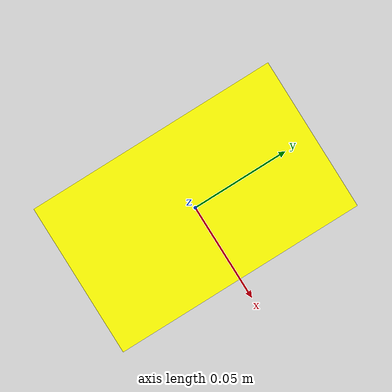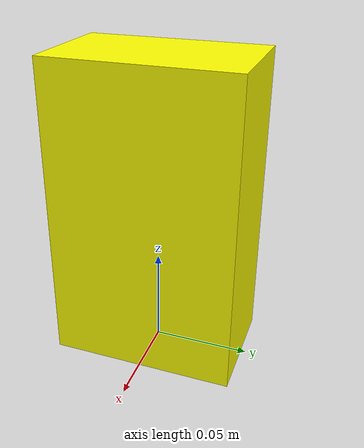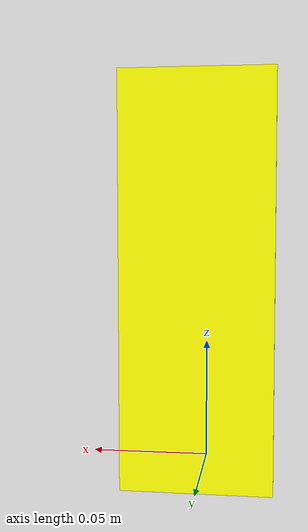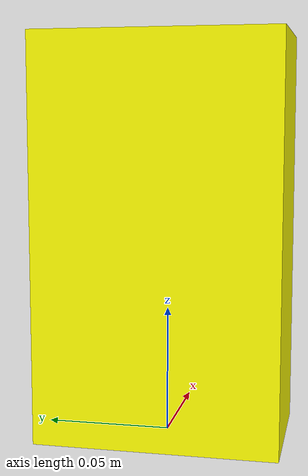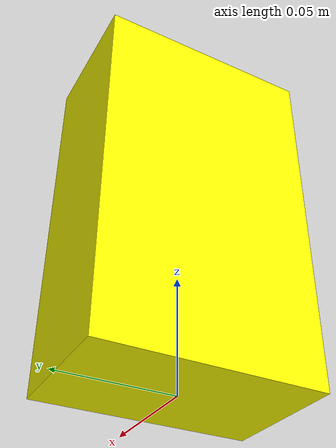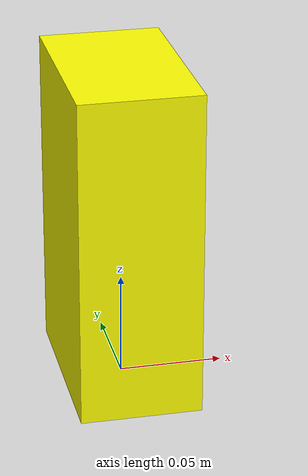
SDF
<?xml version="1.0"?>
<sdf version='1.6'>
<model name="mustard_bottle">
  <link name="base_link_mustard">
    <inertial>
      <pose frame=''>0 0 0.079 0 0 0</pose>
      <mass>0.603</mass>
        <inertia>
          <ixx>0.00170794725</ixx>
          <ixy>0</ixy>
          <ixz>0</ixz>
          <iyy>0.001423482</iyy>
          <iyz>0</iyz>
          <izz>0.00062254725</izz>
        </inertia>
    </inertial>
    <visual name='base_link_mustard'>
      <pose frame=''>0 0 0.079 0 0 0</pose>
      <geometry>
        <box>
          <size>0.058 0.095 0.158</size>
        </box>
      </geometry>
      <material>
        <diffuse>1.0 1.0 0 1.0</diffuse>
      </material>
    </visual>

    <collision name='mustard_bottle_collision'>
      <pose>0 0 0.079 0 0 0</pose>
      <geometry>
        <box>
          <size>0.057 0.094 0.157</size>
        </box>
      </geometry>
      <material>
        <diffuse>0 1 0 1.0</diffuse>
      </material>
    </collision>

    <collision name='point_collision1'>
      <pose>0.029 0.0475 0 0 0 0</pose>
      <geometry>
        <sphere><radius>1e-7</radius></sphere>
      </geometry>
    </collision>

    <collision name='point_collision2'>
      <pose>0.029 -0.0475 0 0 0 0</pose>
      <geometry>
        <sphere><radius>1e-7</radius></sphere>
      </geometry>
    </collision>

    <collision name='point_collision3'>
      <pose>-0.029 0.0475 0 0 0 0</pose>
      <geometry>
        <sphere><radius>1e-7</radius></sphere>
      </geometry>
    </collision>

    <collision name='point_collision4'>
      <pose>-0.029 -0.0475 0 0 0 0</pose>
      <geometry>
        <sphere><radius>1e-7</radius></sphere>
      </geometry>
    </collision>

    <collision name='point_collision5'>
      <pose>0.029 0.0475 0.158 0 0 0</pose>
      <geometry>
        <sphere><radius>1e-7</radius></sphere>
      </geometry>
    </collision>

    <collision name='point_collision6'>
      <pose>0.029 -0.0475 0.158 0 0 0</pose>
      <geometry>
        <sphere><radius>1e-7</radius></sphere>
      </geometry>
    </collision>

    <collision name='point_collision7'>
      <pose>-0.029 0.0475 0.158 0 0 0</pose>
      <geometry>
        <sphere><radius>1e-7</radius></sphere>
      </geometry>
    </collision>

    <collision name='point_collision8'>
      <pose>-0.029 -0.0475 0.158 0 0 0</pose>
      <geometry>
        <sphere><radius>1e-7</radius></sphere>
      </geometry>
    </collision>

   </link>
</model>
</sdf>
